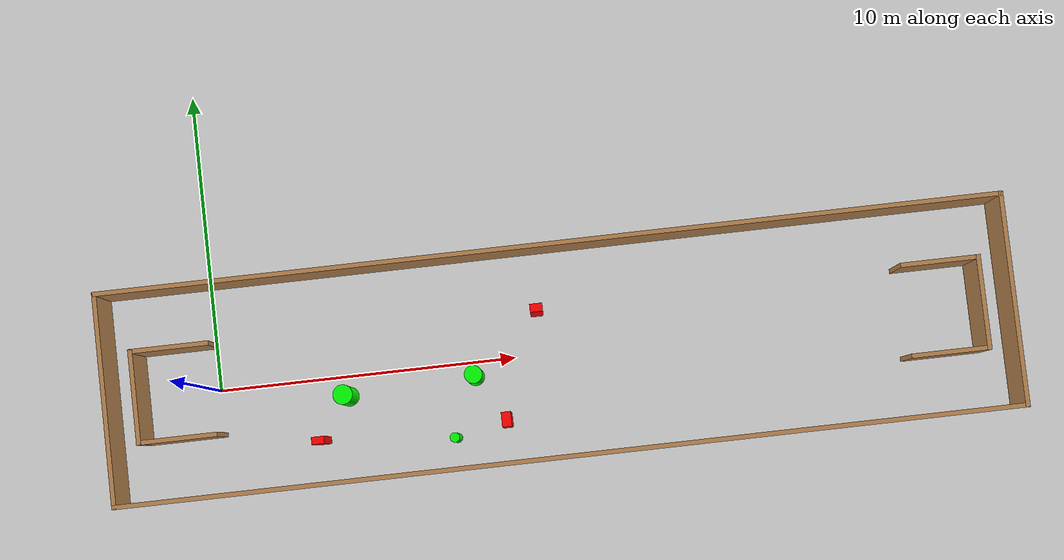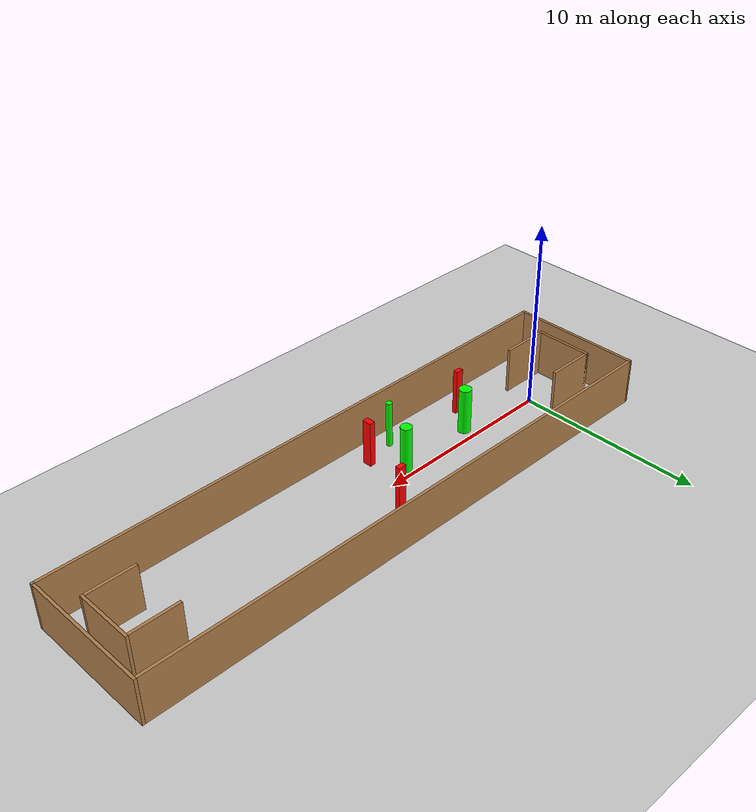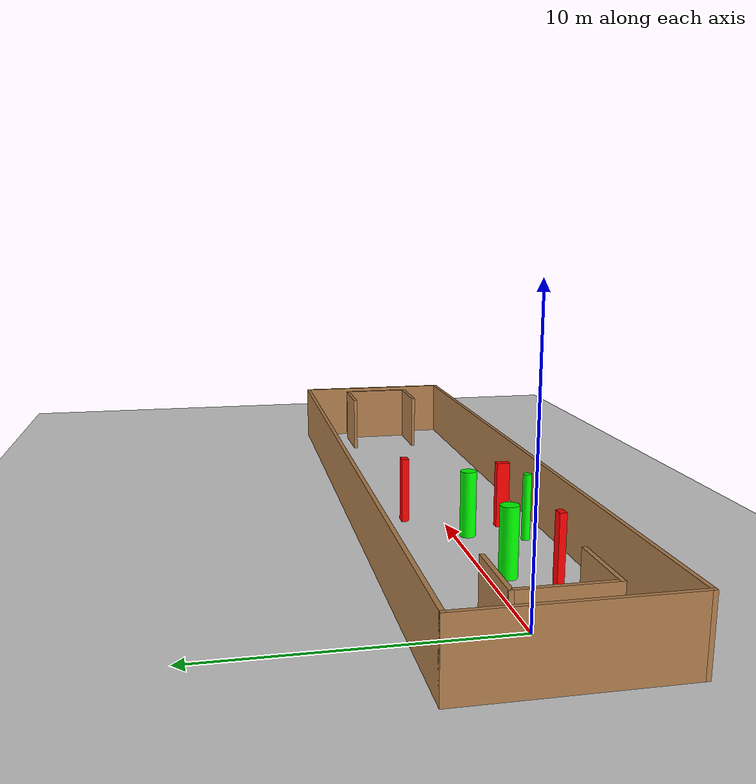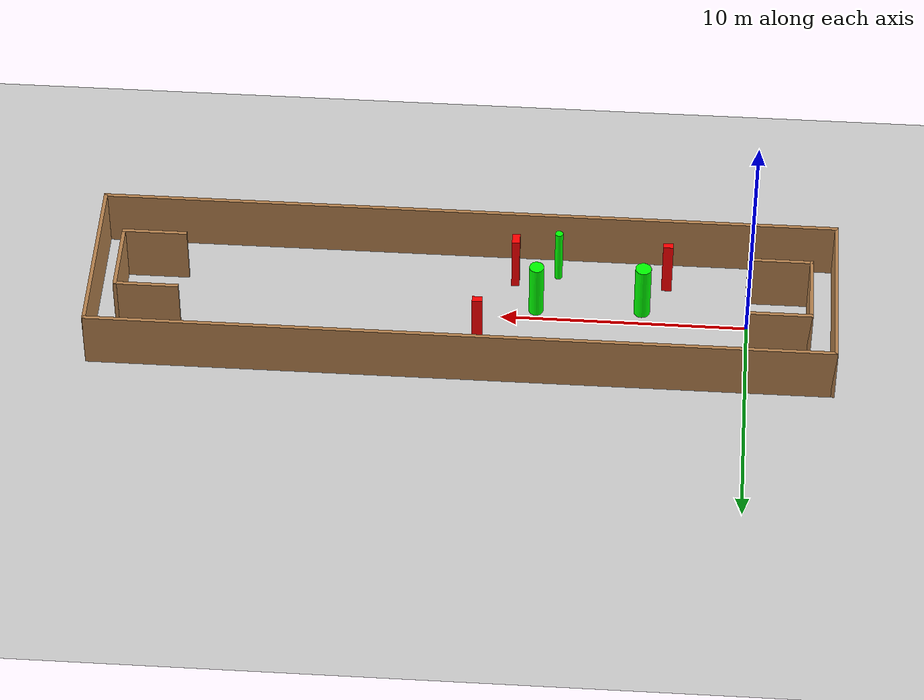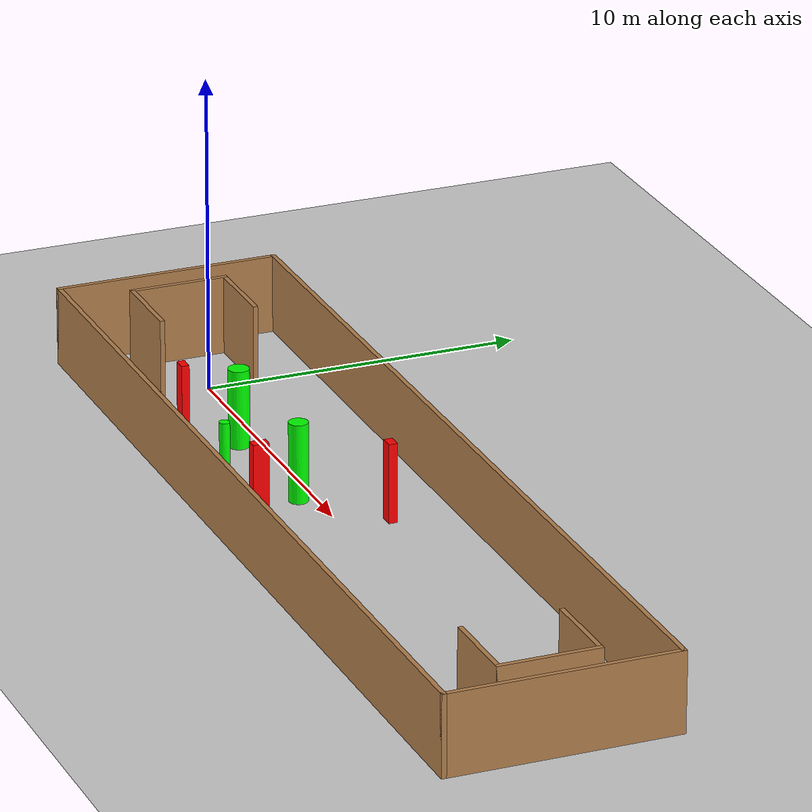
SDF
<sdf version="1.7">
 <world name="default">
  <light name="sun" type="directional">
   <pose>0 0 10 0 -0 0</pose>
   <diffuse>0.8 0.8 0.8 1</diffuse>
   <specular>0.2 0.2 0.2 1</specular>
   <attenuation>
    <range>1000</range>
    <constant>0.9</constant>
    <linear>0.01</linear>
    <quadratic>0.001</quadratic>
   </attenuation>
   <direction>-0.5 0.1 -0.9</direction>
   <spot><inner_angle>0</inner_angle><outer_angle>0</outer_angle><falloff>0</falloff></spot>
  </light>
  <model name="ground_plane">
   <static>1</static>
   <link name="link">
    <collision name="collision">
     <geometry><plane><normal>0 0 1</normal><size>100 100</size></plane></geometry>
     <surface>
      <contact><collide_bitmask>65535</collide_bitmask></contact>
      <friction><ode><mu>100</mu><mu2>50</mu2></ode></friction>
     </surface>
    </collision>
    <visual name="visual">
     <cast_shadows>0</cast_shadows>
     <geometry><plane><normal>0 0 1</normal><size>100 100</size></plane></geometry>
     <material>
      <script><uri>file://media/materials/scripts/gazebo.material</uri><name>Gazebo/Grey</name></script>
     </material>
    </visual>
   </link>
  </model>
  <gravity>0 0 -9.8</gravity>
  <magnetic_field>6e-06 2.3e-05 -4.2e-05</magnetic_field>
  <atmosphere type="adiabatic"/>
  <physics type="ode">
   <max_step_size>0.001</max_step_size>
   <real_time_factor>1</real_time_factor>
   <real_time_update_rate>1000</real_time_update_rate>
  </physics>
  <scene><ambient>0.4 0.4 0.4 1</ambient><background>0.7 0.7 0.7 1</background><shadows>1</shadows></scene>
  <spherical_coordinates>
   <surface_model>EARTH_WGS84</surface_model>
   <latitude_deg>0</latitude_deg>
   <longitude_deg>0</longitude_deg>
   <elevation>0</elevation>
   <heading_deg>0</heading_deg>
  </spherical_coordinates>
  <model name="my_base_walls">
   <link name="Wall_0">
    <collision name="Wall_0_Collision">
     <geometry><box><size>7.15 0.15 2.5</size></box></geometry>
     <pose>0 0 1.25 0 -0 0</pose>
    </collision>
    <visual name="Wall_0_Visual">
     <pose>0 0 1.25 0 -0 0</pose>
     <geometry><box><size>7.15 0.15 2.5</size></box></geometry>
     <material>
      <script><uri>file://media/materials/scripts/gazebo.material</uri><name>Gazebo/Wood</name></script>
      <ambient>1 1 1 1</ambient>
     </material>
     <meta><layer>0</layer></meta>
    </visual>
    <pose>-15 0 0 0 -0 1.5708</pose>
   </link>
   <link name="Wall_10">
    <collision name="Wall_10_Collision">
     <geometry><box><size>2.65 0.15 2.5</size></box></geometry>
     <pose>0 0 1.25 0 -0 0</pose>
    </collision>
    <visual name="Wall_10_Visual">
     <pose>0 0 1.25 0 -0 0</pose>
     <geometry><box><size>2.65 0.15 2.5</size></box></geometry>
     <material>
      <script><uri>file://media/materials/scripts/gazebo.material</uri><name>Gazebo/Wood</name></script>
      <ambient>1 1 1 1</ambient>
     </material>
     <meta><layer>0</layer></meta>
    </visual>
    <pose>-12.75 -1.5 0 0 -0 0</pose>
   </link>
   <link name="Wall_12">
    <collision name="Wall_12_Collision">
     <geometry><box><size>2.65 0.15 2.5</size></box></geometry>
     <pose>0 0 1.25 0 -0 0</pose>
    </collision>
    <visual name="Wall_12_Visual">
     <pose>0 0 1.25 0 -0 0</pose>
     <geometry><box><size>2.65 0.15 2.5</size></box></geometry>
     <material>
      <script><uri>file://media/materials/scripts/gazebo.material</uri><name>Gazebo/Wood</name></script>
      <ambient>1 1 1 1</ambient>
     </material>
     <meta><layer>0</layer></meta>
    </visual>
    <pose>-12.75 1.5 0 0 -0 0</pose>
   </link>
   <link name="Wall_14">
    <collision name="Wall_14_Collision">
     <geometry><box><size>3.15 0.15 2.5</size></box></geometry>
     <pose>0 0 1.25 0 -0 0</pose>
    </collision>
    <visual name="Wall_14_Visual">
     <pose>0 0 1.25 0 -0 0</pose>
     <geometry><box><size>3.15 0.15 2.5</size></box></geometry>
     <material>
      <script><uri>file://media/materials/scripts/gazebo.material</uri><name>Gazebo/Wood</name></script>
      <ambient>1 1 1 1</ambient>
     </material>
     <meta><layer>0</layer></meta>
    </visual>
    <pose>14 0 0 0 -0 -1.5708</pose>
   </link>
   <link name="Wall_15">
    <collision name="Wall_15_Collision">
     <geometry><box><size>2.65 0.15 2.5</size></box></geometry>
     <pose>0 0 1.25 0 -0 0</pose>
    </collision>
    <visual name="Wall_15_Visual">
     <pose>0 0 1.25 0 -0 0</pose>
     <geometry><box><size>2.65 0.15 2.5</size></box></geometry>
     <material>
      <script><uri>file://media/materials/scripts/gazebo.material</uri><name>Gazebo/Wood</name></script>
      <ambient>1 1 1 1</ambient>
     </material>
     <meta><layer>0</layer></meta>
    </visual>
    <pose>12.75 -1.5 0 0 -0 3.14159</pose>
   </link>
   <link name="Wall_17">
    <collision name="Wall_17_Collision">
     <geometry><box><size>2.65 0.15 2.5</size></box></geometry>
     <pose>0 0 1.25 0 -0 0</pose>
    </collision>
    <visual name="Wall_17_Visual">
     <pose>0 0 1.25 0 -0 0</pose>
     <geometry><box><size>2.65 0.15 2.5</size></box></geometry>
     <material>
      <script><uri>file://media/materials/scripts/gazebo.material</uri><name>Gazebo/Wood</name></script>
      <ambient>1 1 1 1</ambient>
     </material>
     <meta><layer>0</layer></meta>
    </visual>
    <pose>12.75 1.5 0 0 -0 3.14159</pose>
   </link>
   <link name="Wall_2">
    <collision name="Wall_2_Collision">
     <geometry><box><size>30.15 0.15 2.5</size></box></geometry>
     <pose>0 0 1.25 0 -0 0</pose>
    </collision>
    <visual name="Wall_2_Visual">
     <pose>0 0 1.25 0 -0 0</pose>
     <geometry><box><size>30.15 0.15 2.5</size></box></geometry>
     <material>
      <script><uri>file://media/materials/scripts/gazebo.material</uri><name>Gazebo/Wood</name></script>
      <ambient>1 1 1 1</ambient>
     </material>
     <meta><layer>0</layer></meta>
    </visual>
    <pose>-0 -3.5 0 0 -0 0</pose>
   </link>
   <link name="Wall_4">
    <collision name="Wall_4_Collision">
     <geometry><box><size>30.15 0.15 2.5</size></box></geometry>
     <pose>0 0 1.25 0 -0 0</pose>
    </collision>
    <visual name="Wall_4_Visual">
     <pose>0 0 1.25 0 -0 0</pose>
     <geometry><box><size>30.15 0.15 2.5</size></box></geometry>
     <material>
      <script><uri>file://media/materials/scripts/gazebo.material</uri><name>Gazebo/Wood</name></script>
      <ambient>1 1 1 1</ambient>
     </material>
     <meta><layer>0</layer></meta>
    </visual>
    <pose>-0 3.5 0 0 -0 0</pose>
   </link>
   <link name="Wall_6">
    <collision name="Wall_6_Collision">
     <geometry><box><size>7.15 0.15 2.5</size></box></geometry>
     <pose>0 0 1.25 0 -0 0</pose>
    </collision>
    <visual name="Wall_6_Visual">
     <pose>0 0 1.25 0 -0 0</pose>
     <geometry><box><size>7.15 0.15 2.5</size></box></geometry>
     <material>
      <script><uri>file://media/materials/scripts/gazebo.material</uri><name>Gazebo/Wood</name></script>
      <ambient>1 1 1 1</ambient>
     </material>
     <meta><layer>0</layer></meta>
    </visual>
    <pose>15 0 0 0 -0 -1.5708</pose>
   </link>
   <link name="Wall_9">
    <collision name="Wall_9_Collision">
     <geometry><box><size>3.15 0.15 2.5</size></box></geometry>
     <pose>0 0 1.25 0 -0 0</pose>
    </collision>
    <visual name="Wall_9_Visual">
     <pose>0 0 1.25 0 -0 0</pose>
     <geometry><box><size>3.15 0.15 2.5</size></box></geometry>
     <material>
      <script><uri>file://media/materials/scripts/gazebo.material</uri><name>Gazebo/Wood</name></script>
      <ambient>1 1 1 1</ambient>
     </material>
     <meta><layer>0</layer></meta>
    </visual>
    <pose>-14 0 0 0 -0 -1.5708</pose>
   </link>
   <static>1</static>
   <pose>11.5 0 0 0 -0 0</pose>
  </model>
  <model name="cylinder1">
   <static>1</static>
   <link name="link">
    <inertial>
     <mass>1</mass>
     <inertia><ixx>0.5</ixx><ixy>0</ixy><ixz>0</ixz><iyy>0.5</iyy><iyz>0</iyz><izz>1</izz></inertia>
    </inertial>
    <collision name="collision">
     <geometry><cylinder><radius>0.15961073862377376</radius><length>2.5</length></cylinder></geometry>
    </collision>
    <visual name="visual">
     <geometry><cylinder><radius>0.15961073862377376</radius><length>2.5</length></cylinder></geometry>
     <material>
      <ambient>0 1 0 1</ambient>
      <diffuse>0 1 0 1</diffuse>
      <specular>0.1 0.1 0.1 1</specular>
      <emissive>0 0 0 0</emissive>
     </material>
    </visual>
   </link>
   <pose>7.776905595074208 -2.4699076658411347 1.25 0 0 0</pose>
  </model>
  <model name="cylinder2">
   <static>1</static>
   <link name="link">
    <inertial>
     <mass>1</mass>
     <inertia><ixx>0.5</ixx><ixy>0</ixy><ixz>0</ixz><iyy>0.5</iyy><iyz>0</iyz><izz>1</izz></inertia>
    </inertial>
    <collision name="collision">
     <geometry><cylinder><radius>0.32594876089427355</radius><length>2.5</length></cylinder></geometry>
    </collision>
    <visual name="visual">
     <geometry><cylinder><radius>0.32594876089427355</radius><length>2.5</length></cylinder></geometry>
     <material>
      <ambient>0 1 0 1</ambient>
      <diffuse>0 1 0 1</diffuse>
      <specular>0.1 0.1 0.1 1</specular>
      <emissive>0 0 0 0</emissive>
     </material>
    </visual>
   </link>
   <pose>4.279849481029878 -0.6752186607896364 1.25 0 0 0</pose>
  </model>
  <model name="cylinder3">
   <static>1</static>
   <link name="link">
    <inertial>
     <mass>1</mass>
     <inertia><ixx>0.5</ixx><ixy>0</ixy><ixz>0</ixz><iyy>0.5</iyy><iyz>0</iyz><izz>1</izz></inertia>
    </inertial>
    <collision name="collision">
     <geometry><cylinder><radius>0.29773323403700913</radius><length>2.5</length></cylinder></geometry>
    </collision>
    <visual name="visual">
     <geometry><cylinder><radius>0.29773323403700913</radius><length>2.5</length></cylinder></geometry>
     <material>
      <ambient>0 1 0 1</ambient>
      <diffuse>0 1 0 1</diffuse>
      <specular>0.1 0.1 0.1 1</specular>
      <emissive>0 0 0 0</emissive>
     </material>
    </visual>
   </link>
   <pose>8.590760675311563 -0.49183312490113673 1.25 0 0 0</pose>
  </model>
  <model name="box1">
   <static>1</static>
   <link name="link">
    <inertial>
     <mass>1</mass>
     <inertia><ixx>0.083</ixx><ixy>0</ixy><ixz>0</ixz><iyy>0.083</iyy><iyz>0</iyz><izz>0.083</izz></inertia>
    </inertial>
    <collision name="collision">
     <geometry><box><size>0.4170574787518522 0.2739463388869076 2.5</size></box></geometry>
    </collision>
    <visual name="visual">
     <geometry><box><size>0.4170574787518522 0.2739463388869076 2.5</size></box></geometry>
     <material>
      <ambient>1 0 0 1</ambient>
      <diffuse>1 0 0 1</diffuse>
      <specular>0.1 0.1 0.1 1</specular>
      <emissive>0 0 0 0</emissive>
     </material>
    </visual>
    <sensor name="my_contact" type="contact">
     <contact><collision>box_collision</collision><topic>__default_topic__</topic></contact>
    </sensor>
   </link>
   <pose>10.877268906836068 1.4514593254195072 1.25 0 0 0</pose>
  </model>
  <model name="box2">
   <static>1</static>
   <link name="link">
    <inertial>
     <mass>1</mass>
     <inertia><ixx>0.083</ixx><ixy>0</ixy><ixz>0</ixz><iyy>0.083</iyy><iyz>0</iyz><izz>0.083</izz></inertia>
    </inertial>
    <collision name="collision">
     <geometry><box><size>0.3169869355217087 0.492744060935533 2.5</size></box></geometry>
    </collision>
    <visual name="visual">
     <geometry><box><size>0.3169869355217087 0.492744060935533 2.5</size></box></geometry>
     <material>
      <ambient>1 0 0 1</ambient>
      <diffuse>1 0 0 1</diffuse>
      <specular>0.1 0.1 0.1 1</specular>
      <emissive>0 0 0 0</emissive>
     </material>
    </visual>
    <sensor name="my_contact" type="contact">
     <contact><collision>box_collision</collision><topic>__default_topic__</topic></contact>
    </sensor>
   </link>
   <pose>9.51580164228873 -2.069356925004968 1.25 0 0 0</pose>
  </model>
  <model name="box3">
   <static>1</static>
   <link name="link">
    <inertial>
     <mass>1</mass>
     <inertia><ixx>0.083</ixx><ixy>0</ixy><ixz>0</ixz><iyy>0.083</iyy><iyz>0</iyz><izz>0.083</izz></inertia>
    </inertial>
    <collision name="collision">
     <geometry><box><size>0.4123727455788315 0.2440162816461645 2.5</size></box></geometry>
    </collision>
    <visual name="visual">
     <geometry><box><size>0.4123727455788315 0.2440162816461645 2.5</size></box></geometry>
     <material>
      <ambient>1 0 0 1</ambient>
      <diffuse>1 0 0 1</diffuse>
      <specular>0.1 0.1 0.1 1</specular>
      <emissive>0 0 0 0</emissive>
     </material>
    </visual>
    <sensor name="my_contact" type="contact">
     <contact><collision>box_collision</collision><topic>__default_topic__</topic></contact>
    </sensor>
   </link>
   <pose>3.3190763368574014 -2.065635652850001 1.25 0 0 0</pose>
  </model>
 </world>
</sdf>
